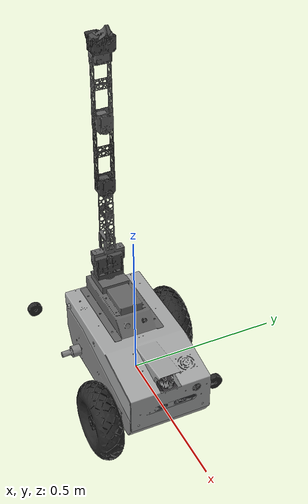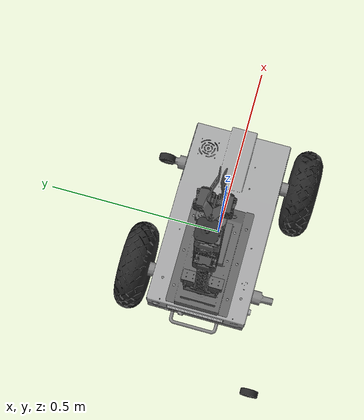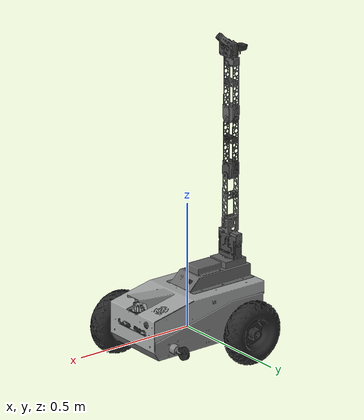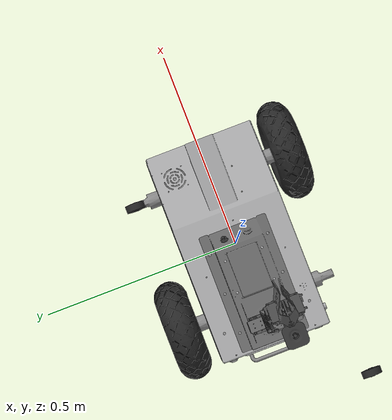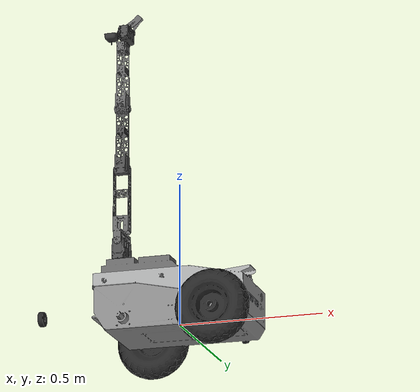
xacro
<?xml version="1.0"?>
<robot xmlns:xacro="http://www.ros.org/wiki/xacro" name="komodo_with_arm">

	<!--    BASE ROBOT     -->
	<xacro:include filename="$(find robotican_description)/komodo/models/komodo_base.xacro" />
	<!--        END        -->

	<!--        ARM        -->
	<xacro:include filename="$(find robotican_description)/robot_arms/dynamixel_arm/arm.xacro" />
	<!--        END        -->

	<!--	LOAD LINKS	   -->

	<link name="Arm_base_link">
    		<inertial>
      			<origin rpy="0 0 0" xyz="-0.0168723530982394 -5.23224904403848E-05 0.038112696778507" />
      			<mass value="1.08982930885161" />
      			<inertia ixx="0.00311458437968986" ixy="-7.0610782277189E-06" ixz="-0.000262941654993437" iyy="0.00855106134499406" iyz="1.00391927392762E-06" izz="0.0104177337437887" />
    		</inertial>
    		<visual>
      			<origin rpy="0 0 0" xyz="0 0 0" />
      			<geometry>
        			<mesh filename="package://robotican_description/komodo/meshes/Arm_base_link.STL" />
      			</geometry>
      			<material name="">
        			<color rgba="0.4 0.4 0.4 1" />
      			</material>
    		</visual>
    		<collision>
      			<origin rpy="0 0 0" xyz="0 0 0" />
      			<geometry>
        			<mesh filename="package://robotican_description/komodo/meshes/Arm_base_link.STL" />
      			</geometry>
    		</collision>
  	</link>

	<link name="Arm_Camera_link">
    		<inertial>
      			<origin rpy="0 0 0" xyz="3.63554297842268E-06 0.000213444909942184 -0.00979905208116372" />
      			<mass value="0.0346828395874569" />
      			<inertia ixx="6.28790794550091E-06" ixy="-2.06796512209413E-09" ixz="1.17989404036011E-09" iyy="6.08020883541883E-06" iyz="3.61783344700129E-08" izz="9.95214525566595E-06" />
    		</inertial>
    		<visual>
      			<origin rpy="0 0 0" xyz="0 0 0" />
      			<geometry>
        			<mesh filename="package://robotican_description/komodo/meshes/Arm_Camera_link.STL" />
      			</geometry>
      			<material name="">
        			<color rgba="0.2 0.2 0.2 1" />
      			</material>
    		</visual>
    		<collision>
      			<origin rpy="0 0 0" xyz="0 0 0" />
      			<geometry>
        			<mesh filename="package://robotican_description/komodo/meshes/Arm_Camera_link.STL" />
      			</geometry>
    		</collision>
  	</link>

  	<!--        END        -->

	<!--    LOAD JOINTS    -->

	<joint name="base_rotation_joint" type="revolute">
    		<origin xyz="-0.096277996026178 0 0.0549000000000002" rpy="-5.46369598732866E-16 1.34659130519145E-15 -2.1922983760752E-31" />
    		<parent link="Arm_base_link" />
    		<child link="base_rotation_link" />
    		<axis xyz="0 0 1" />
    		<limit lower="-1.57079" upper="1.57079" effort="10" velocity="0" />
	</joint>

	<joint name="Arm_base_joint" type="fixed">
    		<origin xyz="-0.112249972183238 0 0.167160698455407" rpy="3.54761842723405E-15 -3.56763412295181E-15 -3.35371649289343E-30" />
    		<parent link="base_link" />
   		<child link="Arm_base_link" />
    		<axis xyz="0 0 1" />
  	</joint>

  		<joint name="Arm_camera_joint" type="fixed">
    		<origin xyz="-0.0552499999999999 0 0.0340250000000002" rpy="1.60129334747211E-25 2.01127359533543E-16 -1.57079632649567" />
    		<parent link="wrist_link" />
    		<child link="Arm_Camera_link" />
    		<axis xyz="0 0 0.999999999998754" />
  	</joint>

	<!--        END        -->
</robot>

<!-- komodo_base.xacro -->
<robot xmlns:xacro="http://www.ros.org/wiki/xacro" name="komodo">

	<!-- Load all the links  -->
	<xacro:include filename="$(find robotican_description)/komodo/komodo_base_links/komodo_rover.xacro" />
	<xacro:include filename="$(find robotican_description)/komodo/komodo_base_links/Front_Camera_link.xacro" />
	<xacro:include filename="$(find robotican_description)/komodo/komodo_base_links/Asus_Camera_link.xacro" />
	<xacro:include filename="$(find robotican_description)/komodo/komodo_base_links/Laser_link.xacro" />
	<xacro:include filename="$(find robotican_description)/komodo/komodo_base_links/Left_URF_link.xacro" />
	<xacro:include filename="$(find robotican_description)/komodo/komodo_base_links/Rear_URF_link.xacro" />
	<xacro:include filename="$(find robotican_description)/komodo/komodo_base_links/Right_URF_link.xacro" />
	<xacro:include filename="$(find robotican_description)/komodo/komodo_base_links/sensors_unit_link.xacro" />
	<!--         END         -->

	<!-- Load all the joints -->

	<joint name="Left_URF_joint" type="fixed">
    		<origin xyz="-0.0223133326154785 0.137250000000005 0.138508176066688" rpy="-2.73331335606168E-15 1.59433090848306E-31 1.5707963267949" />
    		<parent link="base_link" />
    		<child link="Left_URF_link" />
    		<axis xyz="-1 0 0" />
  	</joint>

	<joint name="Rear_URF_joint" type="fixed">
    		<origin xyz="-0.267499972183238 0 0.107999999999999" rpy="-6.16297582203915E-33 2.73331335606168E-15 3.14159265358979" />
    		<parent link="base_link" />
    		<child link="Rear_URF_link" />
    		<axis xyz="-1 0 0" />
  	</joint>

	<joint name="Right_URF_joint" type="fixed">
    		<origin xyz="-0.0223133326154785 -0.137249999999995 0.138508176066688" rpy="2.73331335606168E-15 -1.59433090848306E-31 -1.5707963267949" />
    		<parent link="base_link" />
    		<child link="Right_URF_link" />
    		<axis xyz="-1 0 0" />
  	</joint>

	<joint name="Front_Camera_joint" type="fixed">
    		<origin xyz="0.262250027816762 0.0875000000000051 0.100000000000001" rpy="0 0 0" />
    		<parent link="base_link" />
    		<child link="Front_Camera_link" />
    		<axis xyz="0 0 1" />
  	</joint>

	<joint name="Laser_joint" type="fixed">
    		<origin xyz="0.234263427816762 0 0.145827195177237" rpy="-6.93084604642783E-17 -2.62229105359916E-15 5.55111512312578E-17" />
    		<parent link="base_link" />
    		<child link="Laser_link" />
    		<axis xyz="0 0 -1" />
  	</joint>

	<joint name="Asus_Camera_joint" type="fixed">
    		<origin xyz="0.262250027816762 0 0.0635000000000008" rpy="-6.93084604642783E-17 -2.62229105359916E-15 5.55111512312578E-17" />
    		<parent link="base_link" />
    		<child link="Asus_Camera_link" />
    		<axis xyz="-1 0 0" />
  	</joint>
	<!--         END         -->
</robot>

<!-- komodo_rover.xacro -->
<robot name="komodo_rover">
	<!-- Load all the links  -->
	<link name="base_link">
    		<inertial>
      			<origin rpy="0 0 0" xyz="-0.0205330571995271 4.54409684683429E-05 0.00735986203300292" />
      			<mass value="45.0894999160313" />
      			<inertia ixx="0.723503030508731" ixy="-46.8485359152423E-05" ixz="-0.0875564429068847" iyy="1.38127064231828" iyz="11.9695110167269E-05" izz="1.94371448739423" />
    		</inertial>
    		<visual>
      			<origin rpy="0 0 0" xyz="0 0 0" />
			<geometry>
				<mesh filename="package://robotican_description/komodo/meshes/col_base_link.STL" />
			</geometry>
			<material name="">
				<color rgba="0.52941176470588 0.52941176470588 0.52941176470588 1" />
			</material>
    		</visual>
    		<collision>
      			<origin rpy="0 0 0" xyz="-0.065 0 0" />
      			<geometry>
        			<mesh filename="package://robotican_description/komodo/meshes/col_base_link.STL" />
      			</geometry>
    		</collision>
  	</link>

	<link name="FL_Wheel_link">
    		<inertial>
      			<origin rpy="0 0 0" xyz="-0.00160662480262744 -2.59228543311729E-06 1.49951351856364E-05" />
      			<mass value="3.83427523136739" />
      			<inertia ixx="0.0296525525807749" ixy="1.51001277133356E-06" ixz="2.35766660656153E-06" iyy="0.0163749526386264" iyz="1.2254511654214E-06" izz="0.0163720506916083" />
    		</inertial>
    		<visual>
      			<origin rpy="0 0 0" xyz="0 0 0" />
      			<geometry>
        			<mesh filename="package://robotican_description/komodo/meshes/FL_Wheel_link.STL" />
      			</geometry>
      			<material name="">
        			<color rgba="0.15 0.15 0.15 1" />
      			</material>
    		</visual>
    		<collision>
      			<origin rpy="0 1.5 0" xyz="0 0 0" />
      			<geometry>
        			<cylinder length="0.05" radius="0.1" />
      			</geometry>
    		</collision>
  	</link>

	<link name="FR_Wheel_link">
    		<inertial>
      			<origin rpy="0 0 0" xyz="-0.00160662478940524 -2.59227836232889E-06 1.49952129885679E-05" />
      			<mass value="3.8342752339456" />
      			<inertia ixx="0.0296525526023316" ixy="1.51001308635369E-06" ixz="2.3576732629264E-06" iyy="0.0163749526634419" iyz="1.22545882852199E-06" izz="0.0163720506902763" />
    		</inertial>
    		<visual>
      			<origin rpy="0 0 0" xyz="0 0 0" />
      			<geometry>
        			<mesh filename="package://robotican_description/komodo/meshes/FR_Wheel_link.STL" />
      			</geometry>
      			<material name="">
        			<color rgba="0.15 0.15 0.15 1" />
      			</material>
    		</visual>
    		<collision>
      			<origin rpy="0 1.5 0" xyz="0 0 0" />
      			<geometry>
        			<cylinder length="0.05" radius="0.1" />
      			</geometry>
    		</collision>
  	</link>

	<link name="RL_Wheel_link">
    		<inertial>
      			<origin rpy="0 0 0" xyz="-0.00160662477936549 -2.59222765522371E-06 1.49952106412736E-05" />
      			<mass value="3.83427523542708" />
      			<inertia ixx="0.0296525526119397" ixy="1.5100179619978E-06" ixz="2.35767335983606E-06" iyy="0.0163749526769378" iyz="1.22544931791974E-06" izz="0.0163720506885898" />
    		</inertial>
    		<visual>
      			<origin rpy="0 0 0" xyz="0 0 0" />
      			<geometry>
        			<mesh filename="package://robotican_description/komodo/meshes/RL_Wheel_link.STL" />
      			</geometry>
      			<material name="">
        			<color rgba="0.15 0.15 0.15 1" />
      			</material>
    		</visual>
   	 	<collision>
      			<origin rpy="0 1.5 0" xyz="0 0 0" />
      			<geometry>
        			<cylinder length="0.05" radius="0.1" />
      			</geometry>
    		</collision>
  	</link>

	<link name="RR_Wheel_link">
    		<inertial>
      			<origin rpy="0 0 0" xyz="-0.00160662476834383 -2.59238516814309E-06 1.49950507030127E-05" />
      			<mass value="3.83427523968864" />
      			<inertia ixx="0.0296525526652264" ixy="1.5100019082583E-06" ixz="2.35765651707649E-06" iyy="0.0163749526901628" iyz="1.22544631738128E-06" izz="0.0163720507270359" />
    		</inertial>
    		<visual>
      			<origin rpy="0 0 0" xyz="0 0 0" />
      			<geometry>
        			<mesh filename="package://robotican_description/komodo/meshes/RR_Wheel_link.STL" />
      			</geometry>
      			<material name="">
        			<color rgba="0.15 0.15 0.15 1" />
      			</material>
    		</visual>
    		<collision>
      			<origin rpy="0 1.5 0" xyz="0 0 0" />
      			<geometry>
        			<cylinder length="0.05" radius="0.1" />
      			</geometry>
    		</collision>
  	</link>
	<!--         END         -->

	<!-- Load all the joints -->
	<joint name="FR_Wheel_joint" type="continuous">
    		<origin xyz="0.173999999999995 -0.2009 0" rpy="2.62229105359916E-15 6.9308460464278E-17 1.5707963267949" />
    		<parent link="base_link" />
    		<child link="FR_Wheel_link" />
    		<axis xyz="1 0 0" />
  	</joint>

	<joint name="FL_Wheel_joint" type="continuous">
    		<origin xyz="0.173999999999995 0.2009 0" rpy="-2.62229105359916E-15 6.93084604642783E-17 -1.5707963267949" />
    		<parent link="base_link" />
    		<child link="FL_Wheel_link" />
    		<axis xyz="-1 0 0" />
  	</joint>

	<joint name="RR_Wheel_joint" type="continuous">
    		<origin xyz="-0.156000000000005 -0.2009 0" rpy="2.62229105359916E-15 -1.59433090848306E-31 1.5707963267949" />
    		<parent link="base_link" />
    		<child link="RR_Wheel_link" />
    		<axis xyz="1 0 0" />
  	</joint>

	<joint name="RL_Wheel_joint" type="continuous">
    		<origin xyz="-0.156000000000005 0.2009 0" rpy="-2.62229105359916E-15 -5.57680208627196E-32 -1.5707963267949" />
    		<parent link="base_link" />
    		<child link="RL_Wheel_link" />
    		<axis xyz="-1 0 0" />
  	</joint>
	<!--         END         -->
</robot>

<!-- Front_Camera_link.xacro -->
<robot name="Front_Camera_link"><link name="Front_Camera_link">
    <inertial>
      <origin rpy="0 0 0" xyz="3.63553471578737E-06 0.000213443852909154 -0.00979905092954431" />
      <mass value="0.0346828331927876" />
      <inertia ixx="6.28790547336199E-06" ixy="-2.06834494924545E-09" ixz="1.17994816105049E-09" iyy="6.08020816375924E-06" iyz="3.61787794067701E-08" izz="9.95214453956241E-06" />
    </inertial>
    <visual>
      <origin rpy="-1.57079632649567 1.57079632649567 -1.57079632649567" xyz="0 0 0" />
      <geometry>
        <mesh filename="package://ric_description/komodo/meshes/Front_Camera_link.STL" />
      </geometry>
      <material name="">
        <color rgba="0.1 0.1 0.1 1" />
      </material>
    </visual>
    <collision>
      <origin rpy="1.57 0 0" xyz="0 0 0" />
      <geometry>
        <mesh filename="package://ric_description/komodo/meshes/Front_Camera_link.STL" />
      </geometry>
    </collision>
  </link>
  </robot>

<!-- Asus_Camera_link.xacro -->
<robot name="Asus_Camera_link"><link name="Asus_Camera_link">
    <inertial>
      <origin rpy="0 0 0" xyz="-0.0187798361475048 -0.000287133366772307 -0.000201032384153296" />
      <mass value="0.150306955527936" />
      <inertia ixx="0.00039928218741962" ixy="-5.34870767194659E-07" ixz="-1.37242873517293E-08" iyy="2.36182089627434E-05" iyz="-8.67618422000016E-09" izz="0.000406064964123578" />
    </inertial>
    <visual>
      <origin rpy="0 0 0" xyz="0 0 0" />
      <geometry>
        <mesh filename="package://ric_description/komodo/meshes/Asus_Camera_link.STL" />
      </geometry>
      <material name="">
        <color rgba="0.1792156862745098 0.1819607843137255 0.1933333333333333 1" />
      </material>
    </visual>
    <collision>
      <origin rpy="0 0 0" xyz="0 0 0" />
      <geometry>
        <mesh filename="package://ric_description/komodo/meshes/Asus_Camera_link.STL" />
      </geometry>
    </collision>
  </link>
  </robot>

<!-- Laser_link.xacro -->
<robot name="Laser_link"><link name="Laser_link">
    <inertial>
      <origin rpy="0 0 0" xyz="5.67786090348299E-05 -6.35639788811446E-05 -0.0320034700075499" />
      <mass value="0.133672626323353" />
      <inertia ixx="7.01753800311366E-05" ixy="-5.24162580339348E-08" ixz="1.6420597550453E-07" iyy="7.0476938858621E-05" iyz="1.92324838956078E-07" izz="4.61464878783427E-05" />
    </inertial>
    <visual>
      <origin rpy="0 0 0" xyz="0 0 0" />
      <geometry>
        <mesh filename="package://ric_description/komodo/meshes/Laser_link.STL" />
      </geometry>
      <material name="">
        <color rgba="0.192156862745098 0.1819607843137255 0.1933333333333333 1" />
      </material>
    </visual>
    <collision>
      <origin rpy="0 0 0" xyz="0 0 0" />
      <geometry>
        <mesh filename="package://ric_description/komodo/meshes/Laser_link.STL" />
      </geometry>
    </collision>
  </link>
  </robot>

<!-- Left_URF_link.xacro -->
<robot name="Left_URF_link"><link name="Left_URF_link">
    <inertial>
      <origin rpy="0 0 0" xyz="-0.00942258060476561 1.68888278492922E-05 -0.000193183712129175" />
      <mass value="0.00277487854391404" />
      <inertia ixx="1.28314681514111E-07" ixy="-1.54585356342896E-10" ixz="3.11030599725484E-09" iyy="1.18940672500039E-07" iyz="4.35265830364889E-09" izz="1.28434121553121E-07" />
    </inertial>
    <visual>
      <origin rpy="0 0 0" xyz="0 0 0" />
      <geometry>
        <mesh filename="package://robotican_description/komodo/meshes/Left_URF_link.STL" />
      </geometry>
      <material name="">
        <color rgba="0.752941176470588 0.752941176470588 0.752941176470588 1" />
      </material>
    </visual>
    <collision>
      <origin rpy="0 0 0" xyz="0 0 0" />
      <geometry>
        <mesh filename="package://robotican_description/komodo/meshes/Left_URF_link.STL" />
      </geometry>
    </collision>
  </link>
  </robot>

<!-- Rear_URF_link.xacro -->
<robot name="Rear_URF_link"><link name="Rear_URF_link">
    <inertial>
      <origin rpy="0 0 0" xyz="-0.00942258060476558 1.68888278491873E-05 -0.000193183712129189" />
      <mass value="0.0027748785439141" />
      <inertia ixx="1.28314681514116E-07" ixy="-1.54585356343498E-10" ixz="3.1103059972555E-09" iyy="1.18940672500041E-07" iyz="4.35265830364838E-09" izz="1.28434121553125E-07" />
    </inertial>
    <visual>
      <origin rpy="0 0 0" xyz="0 0 0" />
      <geometry>
        <mesh filename="package://robotican_description/komodo/meshes/Rear_URF_link.STL" />
      </geometry>
      <material name="">
        <color rgba="0.752941176470588 0.752941176470588 0.752941176470588 1" />
      </material>
    </visual>
    <collision>
      <origin rpy="0 0 0" xyz="0 0 0" />
      <geometry>
        <mesh filename="package://robotican_description/komodo/meshes/Rear_URF_link.STL" />
      </geometry>
    </collision>
  </link>
  </robot>

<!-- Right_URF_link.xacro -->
<robot name="Right_URF_link"><link name="Right_URF_link">
    <inertial>
      <origin rpy="0 0 0" xyz="-0.00942258060476561 1.68888278493408E-05 -0.000193183712129202" />
      <mass value="0.00277487854391409" />
      <inertia ixx="1.28314681514115E-07" ixy="-1.54585356342962E-10" ixz="3.11030599725548E-09" iyy="1.18940672500041E-07" iyz="4.3526583036484E-09" izz="1.28434121553124E-07" />
    </inertial>
    <visual>
      <origin rpy="0 0 0" xyz="0 0 0" />
      <geometry>
        <mesh filename="package://ric_description/komodo/meshes/Right_URF_link.STL" />
      </geometry>
      <material name="">
        <color rgba="0.752941176470588 0.752941176470588 0.752941176470588 1" />
      </material>
    </visual>
    <collision>
      <origin rpy="0 0 0" xyz="0 0 0" />
      <geometry>
        <mesh filename="package://ric_description/komodo/meshes/Right_URF_link.STL" />
      </geometry>
    </collision>
  </link>
  </robot>

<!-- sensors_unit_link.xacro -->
<robot name="sensors_unit_link"><link name="sensors_unit_link">
    <inertial>
      <origin rpy="0 0 0" xyz="0.0414414719218708 -0.000373289194023478 0.0507806551833217" />
      <mass value="3.00493541386534" />
      <inertia ixx="0.0317419196615914" ixy="-0.000328957251382255" ixz="-0.0101477531293138" iyy="0.0944166881470797" iyz="2.04069229359132E-05" izz="0.116969738863327" />
    </inertial>
    <visual>
      <origin rpy="0 0 0" xyz="0 0 0" />
      <geometry>
        <mesh filename="package://robotican_description/komodo/meshes/sensors_unit_link.STL" />
      </geometry>
      <material name="">
        <color rgba="0.6509803921568627 0.6537254901960784 0.656078431372549 1" />
      </material>
    </visual>
    <collision>
      <origin rpy="0 0 0" xyz="0 0 0" />
      <geometry>
        <mesh filename="package://robotican_description/komodo/meshes/sensors_unit_link.STL" />
      </geometry>
    </collision>
  </link>
	<joint name="sensors_unit_joint" type="fixed">
    		<origin xyz="-0.00199997218323841 0 0.0835000000000001" rpy="-1.59433090848306E-31 -2.62229105359916E-15 5.55111512312578E-17" />
    		<parent link="base_link" />
    		<child link="sensors_unit_link" />
    		<axis xyz="1 0 0" />
  	</joint>
  </robot>

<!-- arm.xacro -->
<robot name="dynamixel_arm">

	<!-- Load all the links  -->

	<link name="base_rotation_link">
    		<inertial>
      			<origin rpy="0 0 0" xyz="-1.11022302462516E-16 -7.80223872637444E-17 0.0660708417371112" />
      			<mass value="1.4054258533062" />
      			<inertia ixx="0.00159425912810341" ixy="-8.40269196653518E-08" ixz="-1.60925604895535E-19" iyy="0.000605522001732049" iyz="-6.08768470792684E-19" izz="0.00123388334665811" />
    		</inertial>
    		<visual>
      			<origin rpy="0 0 0" xyz="0 0 0" />
      			<geometry>
        			<mesh filename="package://robotican_description/komodo/meshes/base_rotation_link.STL" />
      			</geometry>
      			<material name="">
        			<color rgba="0.3 0.3 0.3 1" />
			</material>
    		</visual>
    		<collision>
      			<origin rpy="0 0 0" xyz="0 0 0" />
      			<geometry>
        			<mesh filename="package://robotican_description/komodo/meshes/base_rotation_link.STL" />
      			</geometry>
    		</collision>
  	</link>

	<link name="elbow1_link">
    		<inertial>
      			<origin rpy="0 0 0" xyz="3.38561240652013E-05 2.66604610292575E-06 0.0239321015909688" />
			<mass value="0.759959116000226" />
      			<inertia ixx="0.0011156254663426" ixy="3.16193221175592E-07" ixz="2.89169705133133E-06" iyy="0.00114606034071406" iyz="-8.11914906919631E-08" izz="0.000237163435713384" />
    		</inertial>
    		<visual>
      			<origin rpy="0 0 0" xyz="0 0 0" />
			<geometry>
        			<mesh filename="package://robotican_description/komodo/meshes/elbow1_link.STL" />
      			</geometry>
			<material name="">
        			<color rgba="0.3 0.3 0.3 1" />
      			</material>
    		</visual>
    		<collision>
      			<origin rpy="0 0 0" xyz="0 0 0" />
      			<geometry>
        			<mesh filename="package://robotican_description/komodo/meshes/elbow1_link.STL" />
      			</geometry>
    		</collision>
  	</link>

	<link name="elbow2_link">
    		<inertial>
      			<origin rpy="0 0 0" xyz="-2.29085121194481E-05 -0.000512185919169572 0.0885118786028204" />
      			<mass value="1.12138857800426" />
      			<inertia ixx="0.0110599202589784" ixy="3.04261287700186E-07" ixz="-1.22468079415109E-06" iyy="0.0110437302875007" iyz="-7.91547787630536E-05" izz="0.000331598270284794" />
    		</inertial>
    		<visual>
      			<origin rpy="0 0 0" xyz="0 0 0" />
      			<geometry>
        			<mesh filename="package://robotican_description/komodo/meshes/elbow2_link.STL" />
      			</geometry>
      			<material name="">
        			<color rgba="0.4 0.4 0.4 1" />
      			</material>
    		</visual>
    		<collision>
      			<origin rpy="0 0 0" xyz="0 0 0" />
      			<geometry>
        			<mesh filename="package://robotican_description/komodo/meshes/elbow2_link.STL" />
      			</geometry>
    		</collision>
  	</link>

	<link name="left_finger_link">
    		<inertial>
      			<origin rpy="0 0 0" xyz="-6.10622663543836E-16 0.0205697573116852 0.0301832532936965" />
      			<mass value="0.0111981711598485" />
      			<inertia ixx="9.77349829713274E-06" ixy="6.1354405537333E-20" ixz="3.95573177730842E-20" iyy="1.11277552627936E-05" iyz="2.19026618569787E-06" izz="3.8860219521149E-06" />
    		</inertial>
    		<visual>
      			<origin rpy="0.185 0 0" xyz="0 0 0" />
      			<geometry>
        			<mesh filename="package://robotican_description/komodo/meshes/left_finger_link.STL" />
      			</geometry>
      			<material name="">
        			<color rgba="0.4 0.4 0.4 1" />
      			</material>
    		</visual>
    		<collision>
      			<origin rpy="0 0 0" xyz="0 0 0" />
      			<geometry>
        			<mesh filename="package://robotican_description/komodo/meshes/left_finger_link.STL" />
      			</geometry>
    		</collision>
	</link>

	<link name="right_finger_link">
    		<inertial>
      			<origin rpy="0 0 0" xyz="2.77555756156289E-16 -0.0205697573116854 0.0301832532936965" />
      			<mass value="0.0111981711598485" />
      			<inertia ixx="9.7734982971327E-06" ixy="1.80407068651258E-20" ixz="2.78908224261042E-20" iyy="1.11277552627935E-05" iyz="-2.19026618569788E-06" izz="3.88602195211489E-06" />
    		</inertial>
    		<visual>
      			<origin rpy="-0.185 0 0" xyz="0 0 0" />
      			<geometry>
        			<mesh filename="package://robotican_description/komodo/meshes/right_finger_link.STL" />
      			</geometry>
     	 		<material name="">
        			<color rgba="0.4 0.4 0.4 1" />
      			</material>
    		</visual>
    		<collision>
      			<origin rpy="0 0 0" xyz="0 0 0" />
      			<geometry>
        			<mesh filename="package://robotican_description/komodo/meshes/right_finger_link.STL" />
      			</geometry>
    		</collision>
  	</link>

	<link name="shoulder_link">
    		<inertial>
      			<origin rpy="0 0 0" xyz="-4.66231481405233E-06 -9.82289126283389E-05 0.0772888499682157" />
      			<mass value="0.191480823048406" />
      			<inertia ixx="0.00107301595696304" ixy="-2.9789063890745E-07" ixz="-2.01216953964121E-08" iyy="0.000975953125213584" iyz="-1.19601921452086E-06" izz="0.000217659789393094" />
    		</inertial>
    		<visual>
      			<origin rpy="0 0 0" xyz="0 0 0" />
      			<geometry>
        			<mesh filename="package://robotican_description/komodo/meshes/shoulder_link.STL" />
      			</geometry>
      			<material name="">
        			<color rgba="0.4 0.4 0.4 1" />
      			</material>
    		</visual>
    		<collision>
      			<origin rpy="0 0 0" xyz="0 0 0" />
      			<geometry>
        			<mesh filename="package://robotican_description/komodo/meshes/shoulder_link.STL" />
      			</geometry>
    		</collision>
  	</link>

	<link name="wrist_link">
    		<inertial>
      			<origin rpy="0 0 0" xyz="-0.000140374211043626 4.00707618562063E-10 0.0303673809619358" />
      			<mass value="0.717337417215465" />
      			<inertia ixx="0.000486392340366094" ixy="4.20757000035677E-12" ixz="-3.91843889020299E-06" iyy="0.000211170064630335" iyz="2.79335159568522E-12" izz="0.000437528795624211" />
    		</inertial>
    		<visual>
      			<origin rpy="0 0 0" xyz="0 0 0" />
      			<geometry>
        			<mesh filename="package://robotican_description/komodo/meshes/wrist_link.STL" />
      			</geometry>
      			<material name="">
        			<color rgba="0.3 0.3 0.3 1" />
      			</material>
    		</visual>
    		<collision>
      			<origin rpy="0 0 0" xyz="0 0 0" />
      			<geometry>
        			<mesh filename="package://robotican_description/komodo/meshes/wrist_link.STL" />
      			</geometry>
    		</collision>
  	</link>
	<!--         END         -->

	<!-- Load all the joints -->

	<joint name="shoulder_joint" type="revolute">
    		<origin xyz="0 0 0.0834999999999999" rpy="-4.20159904047482E-15 -5.97509793174248E-16 9.93431320775303E-15" />
    		<parent link="base_rotation_link" />
    		<child link="shoulder_link" />
    		<axis xyz="0 1 0" />
    		<limit lower="-1.692969" upper="1.692969" effort="2000" velocity="0" />
  	</joint>

	<joint name="elbow1_joint" type="revolute">
    		<origin xyz="0 -0.000251155668932789 0.266305434894181" rpy="1.44504380352115E-15 1.11628850952447E-06 -9.93431159466724E-15" />
    		<parent link="shoulder_link" />
    		<child link="elbow1_link" />
    		<axis xyz="-0.999999999998754 0 0" />
    		<limit lower="-2.4434" upper="2.4434" effort="100" velocity="0" />
  	</joint>

	<joint name="elbow2_joint" type="revolute">
    		<origin xyz="0 0 0.223999999999899" rpy="-4.51048856041191E-16 3.35869632765754E-16 1.57079632687657" />
    		<parent link="elbow1_link" />
    		<child link="elbow2_link" />
    		<axis xyz="1 0 0" />
    		<limit lower="-2.4434" upper="2.4434" effort="10" velocity="0" />
  	</joint>

	<joint name="wrist_joint" type="revolute">
    		<origin xyz="0 -0.0130999999999997 0.244749999999997" rpy="-4.43972025628984E-16 -3.35842401421639E-15 -1.57079632687657" />
    		<parent link="elbow2_link" />
    		<child link="wrist_link" />
    		<axis xyz="0 0 0.999999999998754" />
    		<limit lower="-1.91986" upper="1.91986" effort="10" velocity="0" />
  	</joint>

	<joint name="left_finger_joint" type="revolute">
    		<origin xyz="-0.000250000000000111 0.021 0.0422500000000001" rpy="2.85979682697881E-15 1.01870746742143E-16 3.19235832636806E-21" />
    		<parent link="wrist_link" />
   		<child link="left_finger_link" />
    		<axis xyz="1 0 0" />
    		<limit lower="-0.87266" upper="0.87266" effort="10" velocity="0" />
  	</joint>

	<joint name="right_finger_joint" type="revolute">
    		<origin xyz="-0.00024999999999889 -0.021 0.0422499999999999" rpy="0 3.19686557214722E-37 0" />
    		<parent link="wrist_link" />
    		<child link="right_finger_link" />
    		<axis xyz="1 0 0" />
    		<limit lower="-0.87266" upper="0.87266" effort="10" velocity="0" />
  	</joint>

	<!--         END         -->

</robot>
